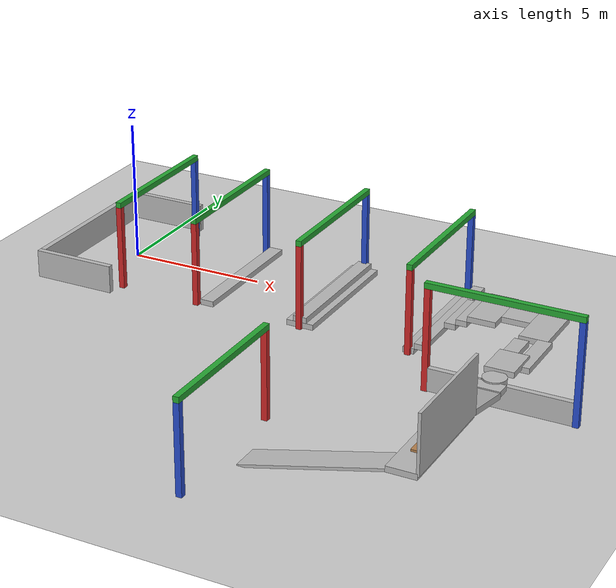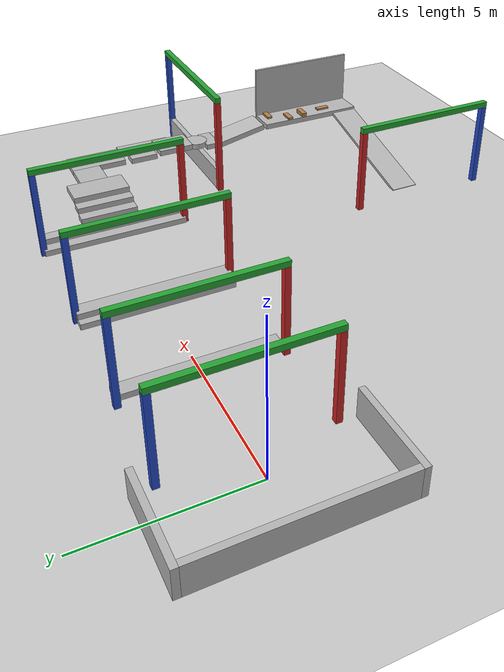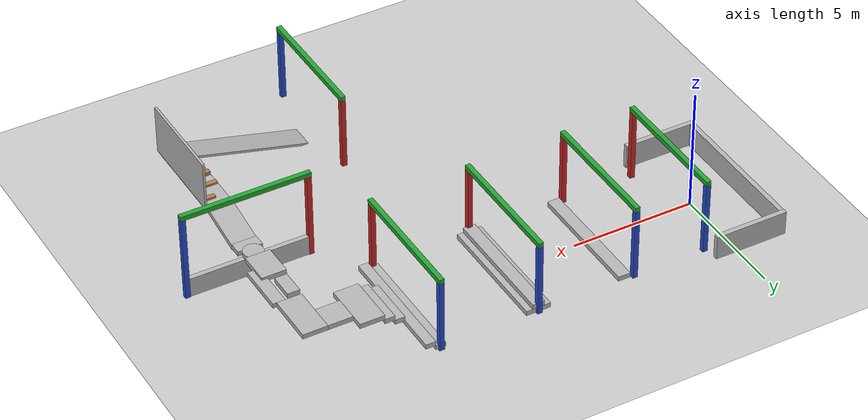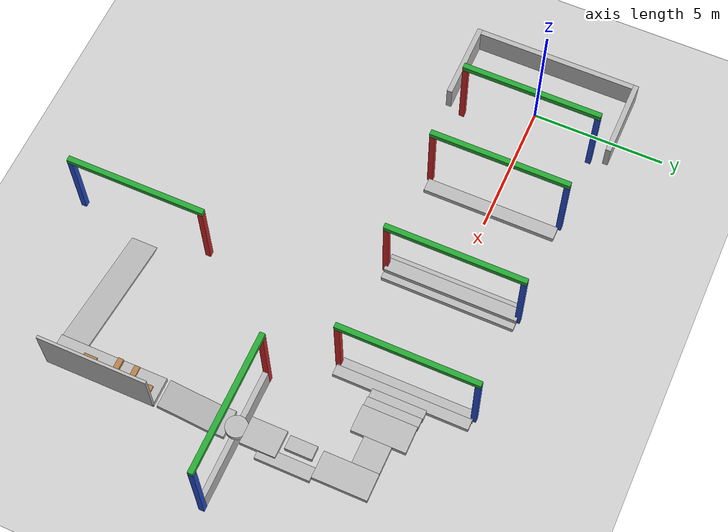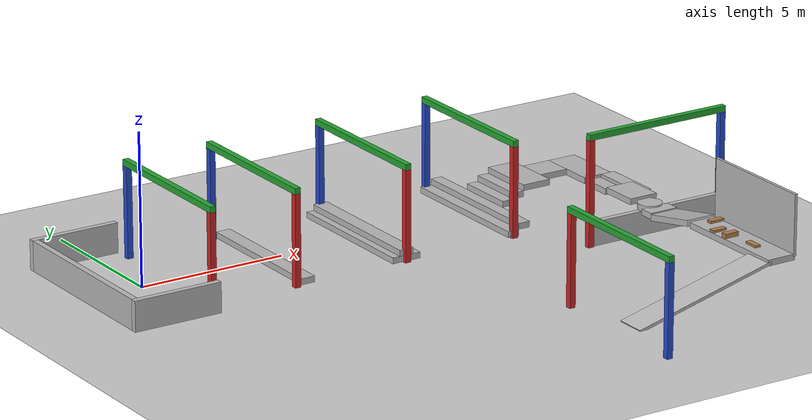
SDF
<?xml version="1.0" ?>
<sdf version="1.4">
  <world name="qual_task_3">
    <physics type="ode">
      <gravity>0 0 -9.81</gravity>
      <ode>
        <solver>
          <type>quick</type>
          <iters>50</iters>
          <sor>1.4</sor>
        </solver>
        <constraints>
          <cfm>0.0</cfm>
          <erp>0.2</erp>
          <contact_max_correcting_vel>100.0</contact_max_correcting_vel>
          <contact_surface_layer>0.0</contact_surface_layer>
        </constraints>
      </ode>
      <real_time_update_rate>1000</real_time_update_rate>
      <max_step_size>0.001</max_step_size>
    </physics>
    <scene>
      <ambient>0.3 0.3 0.3 1.0</ambient>
    </scene>
    <!-- Light Source -->
    <light type="directional" name="sun">
      <cast_shadows>true</cast_shadows>
      <pose>0 0 100 0 0 0</pose>
      <diffuse>0.9 0.9 0.9 1</diffuse>
      <specular>0.1 0.1 0.1 1</specular>
      <attenuation>
        <range>1000</range>
        <constant>0.9</constant>
        <linear>0.01</linear>
        <quadratic>0.001</quadratic>
      </attenuation>
      <direction>-0.2 0.0 -1.0</direction>
    </light>
    <!-- Point Light Source -->
    <light type="point" name="light_bulb">
      <cast_shadows>false</cast_shadows>
      <pose>7.5 -7 5 0 0 0</pose>
      <diffuse>0.5 0.5 0.5 1</diffuse>
      <specular>0.0 0.0 0.0 1</specular>
      <attenuation>
        <range>80</range>
        <constant>0.9</constant>
        <linear>0.01</linear>
        <quadratic>0.001</quadratic>
      </attenuation>
    </light>
    <!-- A ground plane -->
    <include>
      <uri>model://ground_plane</uri>
      <pose>0 0 0 0 0 0</pose>
    </include>
    <model name="starting_pen">
      <static>true</static>
      <pose>-2.0 0 0.5 0 0 0</pose>
      <link name="link">
        <collision name="back_collision">
          <geometry>
            <box>
              <size>0.2 6 1.0</size>
            </box>
          </geometry>
        </collision>
        <visual name="back_visual">
          <geometry>
            <box>
              <size>0.2 6 1.0</size>
            </box>
          </geometry>
          <material>
            <script>
              <uri>file://media/materials/scripts/drc_qual.material</uri>
              <name>DRCQual/WarningWall</name>
            </script>
          </material>
        </visual>
        <collision name="left_collision">
          <pose>1.4 -3.1 0 0 0 0</pose>
          <geometry>
            <box>
              <size>3 0.2 1.0</size>
            </box>
          </geometry>
        </collision>
        <visual name="left_visual_lower">
          <pose>1.4 -3.1 0.0 0 0 0</pose>
          <geometry>
            <box>
              <size>3 0.2 1.0</size>
            </box>
          </geometry>
          <material>
            <script>
              <uri>file://media/materials/scripts/drc_qual.material</uri>
              <name>DRCQual/WarningWall</name>
            </script>
          </material>
        </visual>
        <collision name="right_collision">
          <pose>1.4 3.1 0 0 0 0</pose>
          <geometry>
            <box>
              <size>3 0.2 1.0</size>
            </box>
          </geometry>
        </collision>
        <visual name="right_visual">
          <pose>1.4 3.1 0 0 0 0</pose>
          <geometry>
            <box>
              <size>3 0.2 1.0</size>
            </box>
          </geometry>
          <material>
            <script>
              <uri>file://media/materials/scripts/drc_qual.material</uri>
              <name>DRCQual/WarningWall</name>
            </script>
          </material>
        </visual>
      </link>
    </model>
    <!-- Start: Gate 0 -->
    <include>
      <name>gate_0</name>
      <uri>model://gate</uri>
      <pose>1 0 1.0 0 0 0</pose>
    </include>
    <!-- Gate 1 -->
    <include>
      <name>gate_1</name>
      <uri>model://gate</uri>
      <pose>4 0 1.0 0 0 0</pose>
    </include>
    <!-- Gate 2 -->
    <include>
      <name>gate_2</name>
      <uri>model://gate</uri>
      <pose>8 0 1.0 0 0 0</pose>
    </include>
    <!-- Gate 3 -->
    <include>
      <name>gate_3</name>
      <uri>model://gate</uri>
      <pose>12 0 1.0 0 0 0</pose>
    </include>
    <!-- Gate 4 -->
    <include>
      <name>gate_4</name>
      <uri>model://gate</uri>
      <pose>16 -4.5 1.5 0 0 -1.5707</pose>
    </include>
    <!-- Gate 5 -->
    <include>
      <name>gate_5</name>
      <uri>model://gate</uri>
      <pose>10 -11 1.0 0 0 3.1415</pose>
    </include>
    <!-- Gate 4 Block -->
    <model name="gate4_block">
      <static>true</static>
      <pose>16 -4.5 0.4 0 0 0</pose>
      <link name="link">
        <collision name="collision">
          <geometry>
            <box>
              <size>4.8 0.2 .8</size>
            </box>
          </geometry>
        </collision>
        <visual name="visual">
          <geometry>
            <box>
              <size>4.8 0.2 .8</size>
            </box>
          </geometry>
        </visual>
      </link>
    </model>
    <!-- Box Obstacle 1 -->
    <model name="box_obstacle_1">
      <static>true</static>
      <pose>4.4 0 0.1 0 0 0</pose>
      <link name="link">
        <collision name="collision">
          <geometry>
            <box>
              <size>0.5 5.0 0.2</size>
            </box>
          </geometry>
        </collision>
        <visual name="visual">
          <pose>0 0 0 0 0 0</pose>
          <geometry>
            <box>
              <size>0.5 5.0 0.2</size>
            </box>
          </geometry>
          <material>
            <script>
              <uri>file://media/materials/scripts/drc_qual.material</uri>
              <name>DRCQual/MetalPlate</name>
            </script>
          </material>
        </visual>
      </link>
    </model>
    <!-- Box Obstacle 2 -->
    <model name="box_obstacle_2">
      <static>true</static>
      <pose>8 0 0.1 0 0 0</pose>
      <link name="link">
        <collision name="collision">
          <geometry>
            <box>
              <size>1.0 5.0 0.2</size>
            </box>
          </geometry>
        </collision>
        <visual name="visual">
          <pose>0 0 0 0 0 0</pose>
          <geometry>
            <box>
              <size>1.0 5.0 0.2</size>
            </box>
          </geometry>
          <material>
            <script>
              <uri>file://media/materials/scripts/drc_qual.material</uri>
              <name>DRCQual/MetalPlate</name>
            </script>
          </material>
        </visual>
        <collision name="collision_step">
          <pose>0 0 0.20 0 0 0</pose>
          <geometry>
            <box>
              <size>0.5 5.0 0.2</size>
            </box>
          </geometry>
        </collision>
        <visual name="visual_step">
          <pose>0 0 0.20 0 0 0</pose>
          <geometry>
            <box>
              <size>0.5 5.0 0.2</size>
            </box>
          </geometry>
          <material>
            <script>
              <uri>file://media/materials/scripts/drc_qual.material</uri>
              <name>DRCQual/MetalPlate</name>
            </script>
          </material>
        </visual>
      </link>
    </model>
    <!-- stairs 1 -->
    <model name="stairs_1">
      <static>true</static>
      <pose>12 0 0.1 0 0 0</pose>
      <link name="link">
        <collision name="collision_step_1">
          <geometry>
            <box>
              <size>0.4 5.0 0.2</size>
            </box>
          </geometry>
        </collision>
        <visual name="visual_step_1">
          <geometry>
            <box>
              <size>0.4 5.0 0.2</size>
            </box>
          </geometry>
          <material>
            <script>
              <uri>file://media/materials/scripts/drc_qual.material</uri>
              <name>DRCQual/MetalPlate</name>
            </script>
          </material>
        </visual>
        <collision name="collision_step_2">
          <pose>0.4 0 0.2 0 0 0</pose>
          <geometry>
            <box>
              <size>0.4 5.0 0.2</size>
            </box>
          </geometry>
        </collision>
        <visual name="visual_step_2">
          <pose>0.4 0 0.2 0 0 0</pose>
          <geometry>
            <box>
              <size>0.4 5.0 0.2</size>
            </box>
          </geometry>
          <material>
            <script>
              <uri>file://media/materials/scripts/drc_qual.material</uri>
              <name>DRCQual/MetalPlate</name>
            </script>
          </material>
        </visual>
        <collision name="collision_step_3">
          <pose>0.8 0 0.4 0 0 0</pose>
          <geometry>
            <box>
              <size>0.4 2.0 0.2</size>
            </box>
          </geometry>
        </collision>
        <visual name="visual_step_3">
          <pose>0.8 0 0.4 0 0 0</pose>
          <geometry>
            <box>
              <size>0.4 2.0 0.2</size>
            </box>
          </geometry>
          <material>
            <script>
              <uri>file://media/materials/scripts/drc_qual.material</uri>
              <name>DRCQual/MetalPlate</name>
            </script>
          </material>
        </visual>
        <collision name="collision_step_4">
          <pose>1.2 0 0.6 0 0 0</pose>
          <geometry>
            <box>
              <size>0.4 2.0 0.2</size>
            </box>
          </geometry>
        </collision>
        <visual name="visual_step_4">
          <pose>1.2 0 0.6 0 0 0</pose>
          <geometry>
            <box>
              <size>0.4 2.0 0.2</size>
            </box>
          </geometry>
          <material>
            <script>
              <uri>file://media/materials/scripts/drc_qual.material</uri>
              <name>DRCQual/MetalPlate</name>
            </script>
          </material>
        </visual>
      </link>
    </model>
    <!-- landing -->
    <model name="landing">
      <static>true</static>
      <pose>13.9 0 0.9 0 0 0</pose>
      <link name="link">
        <collision name="collision_1">
          <geometry>
            <box>
              <size>1.0 2.0 0.2</size>
            </box>
          </geometry>
        </collision>
        <visual name="visual_1">
          <geometry>
            <box>
              <size>1.0 2.0 0.2</size>
            </box>
          </geometry>
          <material>
            <script>
              <uri>file://media/materials/scripts/drc_qual.material</uri>
              <name>DRCQual/MetalPlate</name>
            </script>
          </material>
        </visual>
        <collision name="collision_2">
          <pose>1.0 0 0 0 0 0</pose>
          <geometry>
            <box>
              <size>1.0 1.0 0.2</size>
            </box>
          </geometry>
        </collision>
        <visual name="visual_2">
          <pose>1.0 0 0 0 0 0</pose>
          <geometry>
            <box>
              <size>1.0 1.0 0.2</size>
            </box>
          </geometry>
          <material>
            <script>
              <uri>file://media/materials/scripts/drc_qual.material</uri>
              <name>DRCQual/MetalPlate</name>
            </script>
          </material>
        </visual>
        <collision name="collision_3">
          <pose>2.0 -0.5 0 0 0 0</pose>
          <geometry>
            <box>
              <size>1.0 2.0 0.2</size>
            </box>
          </geometry>
        </collision>
        <visual name="visual_3">
          <pose>2.0 -0.5 0 0 0 0</pose>
          <geometry>
            <box>
              <size>1.0 2.0 0.2</size>
            </box>
          </geometry>
          <material>
            <script>
              <uri>file://media/materials/scripts/drc_qual.material</uri>
              <name>DRCQual/MetalPlate</name>
            </script>
          </material>
        </visual>
      </link>
    </model>
    <model name="platform_1">
      <static>true</static>
      <pose>15.6 -2.23 0.9 0 0 0</pose>
      <link name="link">
        <collision name="collision">
          <geometry>
            <box>
              <size>0.5 1.0 0.2</size>
            </box>
          </geometry>
        </collision>
        <visual name="visual">
          <geometry>
            <box>
              <size>0.5 1.0 0.2</size>
            </box>
          </geometry>
          <material>
            <script>
              <uri>file://media/materials/scripts/drc_qual.material</uri>
              <name>DRCQual/MetalPlate</name>
            </script>
          </material>
        </visual>
      </link>
    </model>
    <model name="platform_1a">
      <static>true</static>
      <pose>16.3 -2.5 0.9 0 0 0</pose>
      <link name="link">
        <collision name="collision">
          <geometry>
            <box>
              <size>0.5 2.0 0.2</size>
            </box>
          </geometry>
        </collision>
        <visual name="visual">
          <geometry>
            <box>
              <size>0.5 2.0 0.2</size>
            </box>
          </geometry>
          <material>
            <script>
              <uri>file://media/materials/scripts/drc_qual.material</uri>
              <name>DRCQual/MetalPlate</name>
            </script>
          </material>
        </visual>
      </link>
    </model>
    <model name="platform_2">
      <static>true</static>
      <pose>15.8 -3.5 1.0 0 0 0</pose>
      <link name="link">
        <collision name="collision">
          <geometry>
            <box>
              <size>1.0 1.3 0.2</size>
            </box>
          </geometry>
        </collision>
        <visual name="visual">
          <geometry>
            <box>
              <size>1.0 1.3 0.2</size>
            </box>
          </geometry>
          <material>
            <script>
              <uri>file://media/materials/scripts/drc_qual.material</uri>
              <name>DRCQual/MetalPlate</name>
            </script>
          </material>
        </visual>
      </link>
    </model>
    <!-- cylindrical platform -->
    <model name="platform_3">
      <static>true</static>
      <pose>15.8 -4.5 0.9 0 0 0</pose>
      <link name="link">
        <collision name="collision">
          <geometry>
            <cylinder>
              <radius>0.4</radius>
              <length>0.2</length>
            </cylinder>
          </geometry>
        </collision>
        <visual name="visual">
          <geometry>
            <cylinder>
              <radius>0.4</radius>
              <length>0.2</length>
            </cylinder>
          </geometry>
          <material>
            <script>
              <uri>file://media/materials/scripts/drc_qual.material</uri>
              <name>DRCQual/MetalPlate</name>
            </script>
          </material>
        </visual>
      </link>
    </model>
    <model name="platform_4">
      <static>true</static>
      <pose>15.8 -5.0 0.85 0 0 0</pose>
      <link name="link">
        <collision name="collision">
          <geometry>
            <box>
              <size>1.0 0.5 0.2</size>
            </box>
          </geometry>
        </collision>
        <visual name="visual">
          <geometry>
            <box>
              <size>1.0 0.5 0.2</size>
            </box>
          </geometry>
          <material>
            <script>
              <uri>file://media/materials/scripts/drc_qual.material</uri>
              <name>DRCQual/MetalPlate</name>
            </script>
          </material>
        </visual>
      </link>
    </model>
    <model name="ramp_up">
      <static>true</static>
      <pose>15.8 -6.2 1.0 -0.2 0 0</pose>
      <link name="link">
        <collision name="collision">
          <geometry>
            <box>
              <size>1.0 2.0 0.2</size>
            </box>
          </geometry>
        </collision>
        <visual name="visual">
          <geometry>
            <box>
              <size>1.0 2.0 0.2</size>
            </box>
          </geometry>
          <material>
            <script>
              <uri>file://media/materials/scripts/drc_qual.material</uri>
              <name>DRCQual/MetalPlate</name>
            </script>
          </material>
        </visual>
      </link>
    </model>
    <model name="platform_6">
      <static>true</static>
      <pose>15.8 -9.3 1.18 0 0 0</pose>
      <link name="link">
        <collision name="collision">
          <geometry>
            <box>
              <size>1.0 4.0 0.2</size>
            </box>
          </geometry>
        </collision>
        <visual name="visual">
          <geometry>
            <box>
              <size>1.0 4.0 0.2</size>
            </box>
          </geometry>
          <material>
            <script>
              <uri>file://media/materials/scripts/drc_qual.material</uri>
              <name>DRCQual/MetalPlate</name>
            </script>
          </material>
        </visual>
      </link>
    </model>
    <model name="wall_6">
      <static>true</static>
      <pose>16.3 -9.3 2.2 0 0 0</pose>
      <link name="link">
        <collision name="collision">
          <geometry>
            <box>
              <size>0.1 4.0 2.0</size>
            </box>
          </geometry>
        </collision>
        <visual name="visual">
          <geometry>
            <box>
              <size>0.1 4.0 2.0</size>
            </box>
          </geometry>
          <material>
            <script>
              <uri>file://media/materials/scripts/drc_qual.material</uri>
              <name>DRCQual/MetalPlate</name>
            </script>
          </material>
        </visual>
      </link>
    </model>
    <model name="tunnel_obstacle_1">
      <static>true</static>
      <pose>16.0 -7.67 1.31 0 0 0</pose>
      <link name="link">
        <collision name="collision">
          <geometry>
            <box>
              <size>0.5 0.2 0.1</size>
            </box>
          </geometry>
        </collision>
        <visual name="visual">
          <geometry>
            <box>
              <size>0.5 0.2 0.1</size>
            </box>
          </geometry>
          <material>
            <script>
              <uri>file://media/materials/scripts/drc_qual.material</uri>
              <name>DRCQual/Wood</name>
            </script>
          </material>
        </visual>
      </link>
    </model>
    <model name="tunnel_obstacle_2">
      <static>true</static>
      <pose>15.57 -8.39 1.31 0 0 0</pose>
      <link name="link">
        <collision name="collision">
          <geometry>
            <box>
              <size>0.5 0.2 0.1</size>
            </box>
          </geometry>
        </collision>
        <visual name="visual">
          <geometry>
            <box>
              <size>0.5 0.2 0.1</size>
            </box>
          </geometry>
          <material>
            <script>
              <uri>file://media/materials/scripts/drc_qual.material</uri>
              <name>DRCQual/Wood</name>
            </script>
          </material>
        </visual>
      </link>
    </model>
    <model name="tunnel_obstacle_3">
      <static>true</static>
      <pose>15.57 -9.0 1.33 0 0 0</pose>
      <link name="link">
        <collision name="collision">
          <geometry>
            <box>
              <size>0.5 0.2 0.2</size>
            </box>
          </geometry>
        </collision>
        <visual name="visual">
          <geometry>
            <box>
              <size>0.5 0.2 0.2</size>
            </box>
          </geometry>
          <material>
            <script>
              <uri>file://media/materials/scripts/drc_qual.material</uri>
              <name>DRCQual/Wood</name>
            </script>
          </material>
        </visual>
      </link>
    </model>
    <model name="tunnel_obstacle_4">
      <static>true</static>
      <pose>15.7 -10 1.3 0 0 1.5707</pose>
      <link name="link">
        <collision name="collision">
          <geometry>
            <box>
              <size>0.5 0.2 0.1</size>
            </box>
          </geometry>
        </collision>
        <visual name="visual">
          <geometry>
            <box>
              <size>0.5 0.2 0.1</size>
            </box>
          </geometry>
          <material>
            <script>
              <uri>file://media/materials/scripts/drc_qual.material</uri>
              <name>DRCQual/Wood</name>
            </script>
          </material>
        </visual>
      </link>
    </model>
    <model name="ramp_down">
      <static>true</static>
      <pose>13 -10.8 0.56 0 -0.244 0</pose>
      <link name="link">
        <collision name="collision">
          <geometry>
            <box>
              <size>5.0 1.0 0.1</size>
            </box>
          </geometry>
        </collision>
        <visual name="visual">
          <geometry>
            <box>
              <size>5.0 1.0 0.1</size>
            </box>
          </geometry>
          <material>
            <script>
              <uri>file://media/materials/scripts/drc_qual.material</uri>
              <name>DRCQual/MetalPlateRamp</name>
            </script>
          </material>
        </visual>
      </link>
    </model>
    <plugin filename="libVRCPlugin.so" name="vrc_plugin">
      <atlas>
        <model_name>atlas</model_name>
        <pin_link>utorso</pin_link>
      </atlas>
      <drc_vehicle>
        <model_name>golf_cart</model_name>
        <seat_link>chassis</seat_link>
      </drc_vehicle>
      <drc_fire_hose>
        <fire_hose_model>fire_hose</fire_hose_model>
        <coupling_link>coupling</coupling_link>
        <standpipe_model>standpipe</standpipe_model>
        <spout_link>standpipe</spout_link>
        <thread_pitch>-1000</thread_pitch>
        <coupling_relative_pose>1.17038e-05 -0.125623 0.35 -0.0412152 -1.57078 1.61199</coupling_relative_pose>
      </drc_fire_hose>
    </plugin>
    <plugin filename="libVRCScoringPlugin.so" name="vrc_scoring">
      <score_file>/tmp/qual_task_3/score.log</score_file>
    </plugin>
  </world>
</sdf>

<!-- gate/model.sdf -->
<sdf version="1.4">
  <model name="gate">
    <static>true</static>
    <pose>0 0 2.0 0 0 0</pose>
    <link name="link">
      <collision name="right_collision">
        <pose>0 -2.5 0 0 0 0</pose>
        <geometry>
          <box>
            <size>0.2 0.2 4.0</size>
          </box>
        </geometry>
      </collision>
      <visual name="right_visual">
        <pose>0 -2.5 0 0 0 0</pose>
        <geometry>
          <box>
            <size>0.2 0.2 4.0</size>
          </box>
        </geometry>
        <material>
          <script>
            <uri>model://gate/materials/scripts/gate.material</uri>
            <uri>model://gate/materials/textures</uri>
            <name>vrc/red_gate</name>
          </script>
        </material>
      </visual>

      <collision name="left_collision">
        <pose>0 2.5 0 0 0 0</pose>
        <geometry>
          <box>
            <size>0.2 0.2 4.0</size>
          </box>
        </geometry>
      </collision>
      <visual name="left_visual">
        <pose>0 2.5 0 0 0 0</pose>
        <geometry>
          <box>
            <size>0.2 0.2 4.0</size>
          </box>
        </geometry>
        <material>
          <script>
            <uri>model://gate/materials/scripts/gate.material</uri>
            <uri>model://gate/materials/textures</uri>
            <name>vrc/blue_gate</name>
          </script>
        </material>
      </visual>

      <collision name="top_collision">
        <pose>0 0 2.1 0 0 0</pose>
        <geometry>
          <box>
            <size>0.2 5.2 0.2</size>
          </box>
        </geometry>
      </collision>
      <visual name="top_visual">
        <pose>0 0 2.1 0 0 0</pose>
        <geometry>
          <box>
            <size>0.2 5.2 0.2</size>
          </box>
        </geometry>
        <material>
          <script>
            <uri>model://gate/materials/scripts/gate.material</uri>
            <uri>model://gate/materials/textures</uri>
            <name>vrc/green_gate</name>
          </script>
        </material>
      </visual>
    </link>
  </model>
</sdf>
